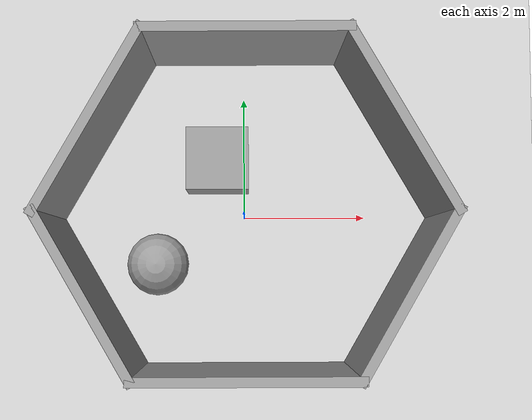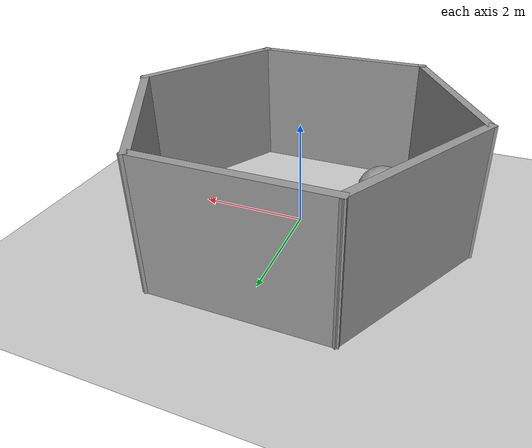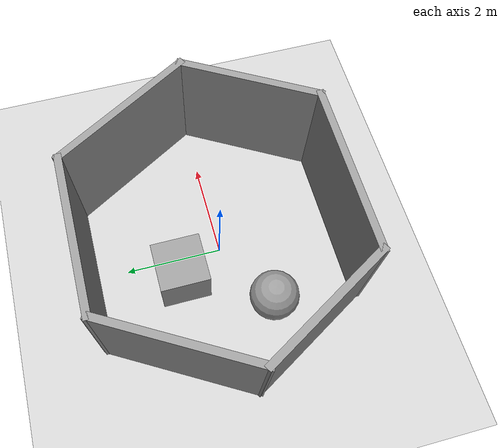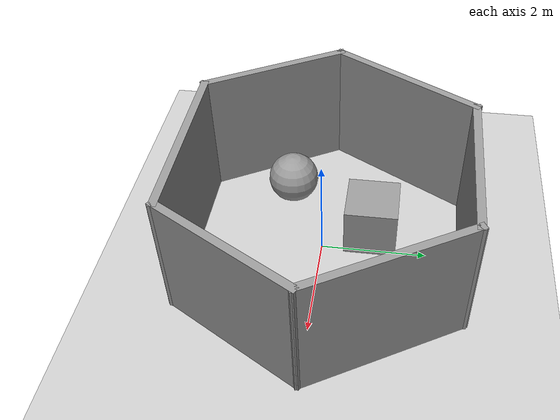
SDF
<sdf version="1.7">
 <world name="default">
  <light name="sun" type="directional">
   <pose>0 0 10 0 -0 0</pose>
   <diffuse>0.8 0.8 0.8 1</diffuse>
   <specular>0.2 0.2 0.2 1</specular>
   <attenuation>
    <range>1000</range>
    <constant>0.9</constant>
    <linear>0.01</linear>
    <quadratic>0.001</quadratic>
   </attenuation>
   <direction>-0.5 0.1 -0.9</direction>
   <spot><inner_angle>0</inner_angle><outer_angle>0</outer_angle><falloff>0</falloff></spot>
  </light>
  <model name="ground_plane">
   <static>1</static>
   <link name="link">
    <collision name="collision">
     <geometry><plane><normal>0 0 1</normal><size>100 100</size></plane></geometry>
     <surface><friction><ode><mu>100</mu><mu2>50</mu2></ode></friction></surface>
    </collision>
    <visual name="visual">
     <cast_shadows>0</cast_shadows>
     <geometry><plane><normal>0 0 1</normal><size>100 100</size></plane></geometry>
     <material>
      <script><uri>file://media/materials/scripts/gazebo.material</uri><name>Gazebo/Grey</name></script>
     </material>
    </visual>
   </link>
  </model>
  <gravity>0 0 -9.8</gravity>
  <magnetic_field>6e-06 2.3e-05 -4.2e-05</magnetic_field>
  <atmosphere type="adiabatic"/>
  <physics type="ode">
   <max_step_size>0.001</max_step_size>
   <real_time_factor>1</real_time_factor>
   <real_time_update_rate>1000</real_time_update_rate>
  </physics>
  <scene><ambient>0.4 0.4 0.4 1</ambient><background>0.7 0.7 0.7 1</background><shadows>1</shadows></scene>
  <spherical_coordinates>
   <surface_model>EARTH_WGS84</surface_model>
   <latitude_deg>0</latitude_deg>
   <longitude_deg>0</longitude_deg>
   <elevation>0</elevation>
   <heading_deg>0</heading_deg>
  </spherical_coordinates>
  <model name="Untitled">
   <pose>0.021762 0.106122 0 0 -0 0</pose>
   <link name="Wall_10">
    <collision name="Wall_10_Collision">
     <geometry><box><size>3.25 0.15 2.5</size></box></geometry>
     <pose>0 0 1.25 0 -0 0</pose>
    </collision>
    <visual name="Wall_10_Visual">
     <pose>0 0 1.25 0 -0 0</pose>
     <geometry><box><size>3.25 0.15 2.5</size></box></geometry>
     <material>
      <script><uri>file://media/materials/scripts/gazebo.material</uri><name>Gazebo/Grey</name></script>
      <ambient>1 1 1 1</ambient>
     </material>
     <meta><layer>0</layer></meta>
    </visual>
    <pose>2.325 1.23409 0 0 -0 2.0944</pose>
   </link>
   <link name="Wall_11">
    <collision name="Wall_11_Collision">
     <geometry><box><size>3.25 0.15 2.5</size></box></geometry>
     <pose>0 0 1.25 0 -0 0</pose>
    </collision>
    <visual name="Wall_11_Visual">
     <pose>0 0 1.25 0 -0 0</pose>
     <geometry><box><size>3.25 0.15 2.5</size></box></geometry>
     <material>
      <script><uri>file://media/materials/scripts/gazebo.material</uri><name>Gazebo/Grey</name></script>
      <ambient>1 1 1 1</ambient>
     </material>
     <meta><layer>0</layer></meta>
    </visual>
    <pose>-0 2.57642 0 0 -0 3.14159</pose>
   </link>
   <link name="Wall_12">
    <collision name="Wall_12_Collision">
     <geometry><box><size>3.25 0.15 2.5</size></box></geometry>
     <pose>0 0 1.25 0 -0 0</pose>
    </collision>
    <visual name="Wall_12_Visual">
     <pose>0 0 1.25 0 -0 0</pose>
     <geometry><box><size>3.25 0.15 2.5</size></box></geometry>
     <material>
      <script><uri>file://media/materials/scripts/gazebo.material</uri><name>Gazebo/Grey</name></script>
      <ambient>1 1 1 1</ambient>
     </material>
     <meta><layer>0</layer></meta>
    </visual>
    <pose>-2.325 1.23409 0 0 -0 -2.0944</pose>
   </link>
   <link name="Wall_7">
    <collision name="Wall_7_Collision">
     <geometry><box><size>3 0.15 2.5</size></box></geometry>
     <pose>0 0 1.25 0 -0 0</pose>
    </collision>
    <visual name="Wall_7_Visual">
     <pose>0 0 1.25 0 -0 0</pose>
     <geometry><box><size>3 0.15 2.5</size></box></geometry>
     <material>
      <script><uri>file://media/materials/scripts/gazebo.material</uri><name>Gazebo/Grey</name></script>
      <ambient>1 1 1 1</ambient>
     </material>
     <meta><layer>0</layer></meta>
    </visual>
    <pose>-2.3875 -1.34234 0 0 -0 -1.0472</pose>
   </link>
   <link name="Wall_8">
    <collision name="Wall_8_Collision">
     <geometry><box><size>3.5 0.15 2.5</size></box></geometry>
     <pose>0 0 1.25 0 -0 0</pose>
    </collision>
    <visual name="Wall_8_Visual">
     <pose>0 0 1.25 0 -0 0</pose>
     <geometry><box><size>3.5 0.15 2.5</size></box></geometry>
     <material>
      <script><uri>file://media/materials/scripts/gazebo.material</uri><name>Gazebo/Grey</name></script>
      <ambient>1 1 1 1</ambient>
     </material>
     <meta><layer>0</layer></meta>
    </visual>
    <pose>-0 -2.57643 0 0 -0 0</pose>
   </link>
   <link name="Wall_9">
    <collision name="Wall_9_Collision">
     <geometry><box><size>3 0.15 2.5</size></box></geometry>
     <pose>0 0 1.25 0 -0 0</pose>
    </collision>
    <visual name="Wall_9_Visual">
     <pose>0 0 1.25 0 -0 0</pose>
     <geometry><box><size>3 0.15 2.5</size></box></geometry>
     <material>
      <script><uri>file://media/materials/scripts/gazebo.material</uri><name>Gazebo/Grey</name></script>
      <ambient>1 1 1 1</ambient>
     </material>
     <meta><layer>0</layer></meta>
    </visual>
    <pose>2.3875 -1.34234 0 0 -0 1.0472</pose>
   </link>
   <static>1</static>
  </model>
  <model name="unit_box">
   <pose>-0.428957 0.919125 0.499995 -1e-05 -0 0</pose>
   <link name="link">
    <inertial>
     <mass>1</mass>
     <inertia>
      <ixx>0.166667</ixx>
      <ixy>0</ixy>
      <ixz>0</ixz>
      <iyy>0.166667</iyy>
      <iyz>0</iyz>
      <izz>0.166667</izz>
     </inertia>
    </inertial>
    <collision name="collision"><geometry><box><size>1 1 1</size></box></geometry></collision>
    <visual name="visual">
     <geometry><box><size>1 1 1</size></box></geometry>
     <material>
      <script><name>Gazebo/Grey</name><uri>file://media/materials/scripts/gazebo.material</uri></script>
     </material>
    </visual>
   </link>
  </model>
  <model name="unit_sphere">
   <pose>-1.40347 -0.766046 0.5 0 -0 0</pose>
   <link name="link">
    <inertial>
     <mass>1</mass>
     <inertia><ixx>0.1</ixx><ixy>0</ixy><ixz>0</ixz><iyy>0.1</iyy><iyz>0</iyz><izz>0.1</izz></inertia>
    </inertial>
    <collision name="collision"><geometry><sphere><radius>0.5</radius></sphere></geometry></collision>
    <visual name="visual">
     <geometry><sphere><radius>0.5</radius></sphere></geometry>
     <material>
      <script><name>Gazebo/Grey</name><uri>file://media/materials/scripts/gazebo.material</uri></script>
     </material>
    </visual>
   </link>
  </model>
 </world>
</sdf>
